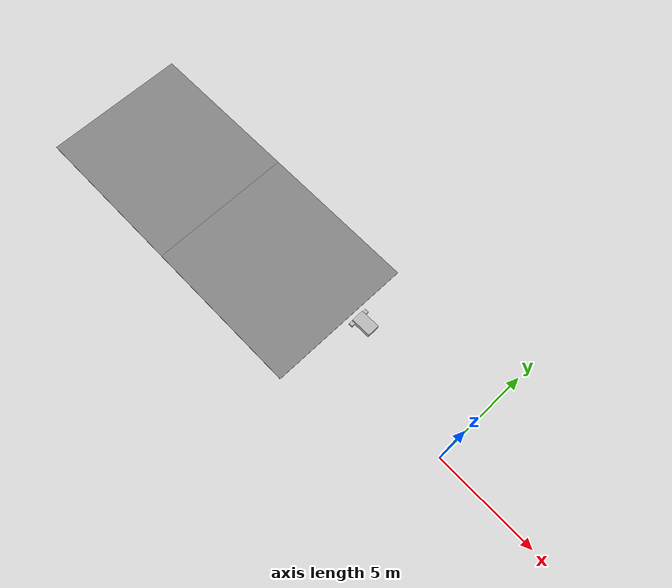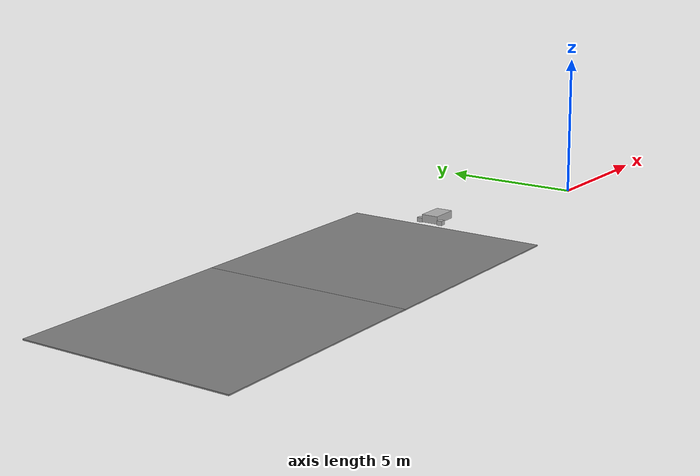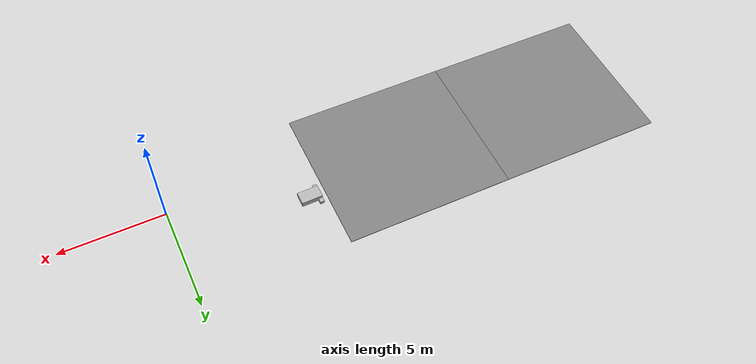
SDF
<sdf version="1.7">
 <world name="default">
  <model name="asphalt_tile_02_00">
   <static>1</static>
   <pose>-19.000 1.133 -0.020 0 -0 0</pose>
   <link name="link">
    <collision name="collision"><geometry><box><size>8.000 7.333 0.040</size></box></geometry></collision>
    <visual name="visual">
     <cast_shadows>0</cast_shadows>
     <geometry><box><size>8.000 7.333 0.040</size></box></geometry>
     <material>
      <ambient>0.5 0.5 0.5 1</ambient>
      <diffuse>0.5 0.5 0.5 1</diffuse>
      <specular>0.2 0.2 0.2 1</specular>
      <emissive>0 0 0 1</emissive>
      <pbr>
       <metal>
        <albedo_map>model://asphalt_plane/materials/textures/tarmac.png</albedo_map>
        <roughness>0.85</roughness>
        <metalness>0</metalness>
       </metal>
      </pbr>
     </material>
    </visual>
   </link>
  </model>
  <model name="asphalt_tile_02_01">
   <static>1</static>
   <pose>-11.000 1.133 -0.020 0 -0 0</pose>
   <link name="link">
    <collision name="collision"><geometry><box><size>8.000 7.333 0.040</size></box></geometry></collision>
    <visual name="visual">
     <cast_shadows>0</cast_shadows>
     <geometry><box><size>8.000 7.333 0.040</size></box></geometry>
     <material>
      <ambient>0.5 0.5 0.5 1</ambient>
      <diffuse>0.5 0.5 0.5 1</diffuse>
      <specular>0.2 0.2 0.2 1</specular>
      <emissive>0 0 0 1</emissive>
      <pbr>
       <metal>
        <albedo_map>model://asphalt_plane/materials/textures/tarmac.png</albedo_map>
        <roughness>0.85</roughness>
        <metalness>0</metalness>
       </metal>
      </pbr>
     </material>
    </visual>
   </link>
  </model>
  <model name="bed_clone">
   <link name="link_1">
    <inertial>
     <mass>0.166557</mass>
     <inertia>
      <ixx>0.00618823</ixx>
      <ixy>0</ixy>
      <ixz>0</ixz>
      <iyy>0.0149173</iyy>
      <iyz>0</iyz>
      <izz>0.0190304</izz>
     </inertia>
    </inertial>
    <pose>0.268517 -0.007523 0.053425 0 -0 0</pose>
    <visual name="visual">
     <geometry><box><size>1 0.609172 0.273416</size></box></geometry>
     <material>
      <ambient>0.7 0.7 0.7 1</ambient>
      <diffuse>0.7 0.7 0.7 1</diffuse>
      <specular>0.08 0.08 0.08 1</specular>
      <emissive>0 0 0 1</emissive>
      <pbr><metal><roughness>0.8</roughness><metalness>0</metalness></metal></pbr>
     </material>
    </visual>
    <collision name="collision">
     <geometry><box><size>1 0.609172 0.273416</size></box></geometry>
     <surface>
      <friction>
       <ode><mu>1</mu><mu2>1</mu2><fdir1>0 0 0</fdir1><slip1>0</slip1><slip2>0</slip2></ode>
       <torsional>
        <coefficient>1</coefficient>
        <patch_radius>0</patch_radius>
        <surface_radius>0</surface_radius>
        <use_patch_radius>1</use_patch_radius>
        <ode><slip>0</slip></ode>
       </torsional>
      </friction>
      <bounce><restitution_coefficient>0</restitution_coefficient><threshold>1e+06</threshold></bounce>
      <contact>
       <collide_without_contact>0</collide_without_contact>
       <collide_without_contact_bitmask>1</collide_without_contact_bitmask>
       <collide_bitmask>1</collide_bitmask>
       <ode>
        <soft_cfm>0</soft_cfm>
        <soft_erp>0.2</soft_erp>
        <kp>1e+13</kp>
        <kd>1</kd>
        <max_vel>0.01</max_vel>
        <min_depth>0</min_depth>
       </ode>
       <bullet>
        <split_impulse>1</split_impulse>
        <split_impulse_penetration_threshold>-0.01</split_impulse_penetration_threshold>
        <soft_cfm>0</soft_cfm>
        <soft_erp>0.2</soft_erp>
        <kp>1e+13</kp>
        <kd>1</kd>
       </bullet>
      </contact>
     </surface>
    </collision>
   </link>
   <link name="link_2">
    <inertial>
     <mass>0.00661892</mass>
     <inertia>
      <ixx>3.651e-05</ixx>
      <ixy>0</ixy>
      <ixz>0</ixz>
      <iyy>3.722e-05</iyy>
      <iyz>0</iyz>
      <izz>4.631e-05</izz>
     </inertia>
    </inertial>
    <pose>-0.144333 -0.400103 -0.02691 0 -0 0</pose>
    <visual name="visual">
     <geometry><box><size>0.206441 0.203314 0.157681</size></box></geometry>
     <material>
      <ambient>0.7 0.7 0.7 1</ambient>
      <diffuse>0.7 0.7 0.7 1</diffuse>
      <specular>0.08 0.08 0.08 1</specular>
      <emissive>0 0 0 1</emissive>
      <pbr><metal><roughness>0.8</roughness><metalness>0</metalness></metal></pbr>
     </material>
    </visual>
    <collision name="collision">
     <geometry><box><size>0.206441 0.203314 0.157681</size></box></geometry>
     <surface>
      <friction>
       <ode><mu>1</mu><mu2>1</mu2><fdir1>0 0 0</fdir1><slip1>0</slip1><slip2>0</slip2></ode>
       <torsional>
        <coefficient>1</coefficient>
        <patch_radius>0</patch_radius>
        <surface_radius>0</surface_radius>
        <use_patch_radius>1</use_patch_radius>
        <ode><slip>0</slip></ode>
       </torsional>
      </friction>
      <bounce><restitution_coefficient>0</restitution_coefficient><threshold>1e+06</threshold></bounce>
      <contact>
       <collide_without_contact>0</collide_without_contact>
       <collide_without_contact_bitmask>1</collide_without_contact_bitmask>
       <collide_bitmask>1</collide_bitmask>
       <ode>
        <soft_cfm>0</soft_cfm>
        <soft_erp>0.2</soft_erp>
        <kp>1e+13</kp>
        <kd>1</kd>
        <max_vel>0.01</max_vel>
        <min_depth>0</min_depth>
       </ode>
       <bullet>
        <split_impulse>1</split_impulse>
        <split_impulse_penetration_threshold>-0.01</split_impulse_penetration_threshold>
        <soft_cfm>0</soft_cfm>
        <soft_erp>0.2</soft_erp>
        <kp>1e+13</kp>
        <kd>1</kd>
       </bullet>
      </contact>
     </surface>
    </collision>
   </link>
   <link name="link_2_clone">
    <inertial>
     <mass>0.00661892</mass>
     <inertia>
      <ixx>3.651e-05</ixx>
      <ixy>0</ixy>
      <ixz>0</ixz>
      <iyy>3.722e-05</iyy>
      <iyz>0</iyz>
      <izz>4.631e-05</izz>
     </inertia>
    </inertial>
    <pose>-0.124183 0.407627 -0.026515 0 -0 0</pose>
    <visual name="visual">
     <geometry><box><size>0.206441 0.203314 0.157681</size></box></geometry>
     <material>
      <ambient>0.7 0.7 0.7 1</ambient>
      <diffuse>0.7 0.7 0.7 1</diffuse>
      <specular>0.08 0.08 0.08 1</specular>
      <emissive>0 0 0 1</emissive>
      <pbr><metal><roughness>0.8</roughness><metalness>0</metalness></metal></pbr>
     </material>
    </visual>
    <collision name="collision">
     <geometry><box><size>0.206441 0.203314 0.157681</size></box></geometry>
     <surface>
      <friction>
       <ode><mu>1</mu><mu2>1</mu2><fdir1>0 0 0</fdir1><slip1>0</slip1><slip2>0</slip2></ode>
       <torsional>
        <coefficient>1</coefficient>
        <patch_radius>0</patch_radius>
        <surface_radius>0</surface_radius>
        <use_patch_radius>1</use_patch_radius>
        <ode><slip>0</slip></ode>
       </torsional>
      </friction>
      <bounce><restitution_coefficient>0</restitution_coefficient><threshold>1e+06</threshold></bounce>
      <contact>
       <collide_without_contact>0</collide_without_contact>
       <collide_without_contact_bitmask>1</collide_without_contact_bitmask>
       <collide_bitmask>1</collide_bitmask>
       <ode>
        <soft_cfm>0</soft_cfm>
        <soft_erp>0.2</soft_erp>
        <kp>1e+13</kp>
        <kd>1</kd>
        <max_vel>0.01</max_vel>
        <min_depth>0</min_depth>
       </ode>
       <bullet>
        <split_impulse>1</split_impulse>
        <split_impulse_penetration_threshold>-0.01</split_impulse_penetration_threshold>
        <soft_cfm>0</soft_cfm>
        <soft_erp>0.2</soft_erp>
        <kp>1e+13</kp>
        <kd>1</kd>
       </bullet>
      </contact>
     </surface>
    </collision>
   </link>
   <static>1</static>
   <pose>-6.51457 1.90124 0.093283 0 -0 0.014289</pose>
  </model>
 </world>
</sdf>
